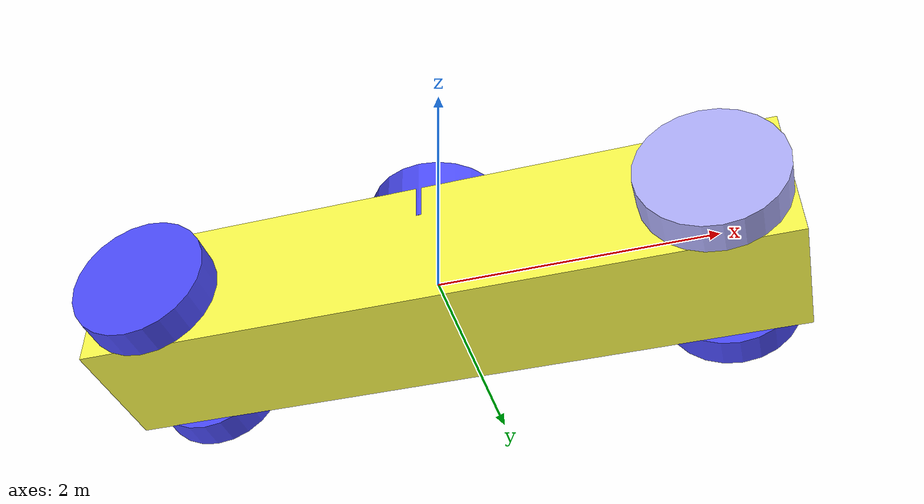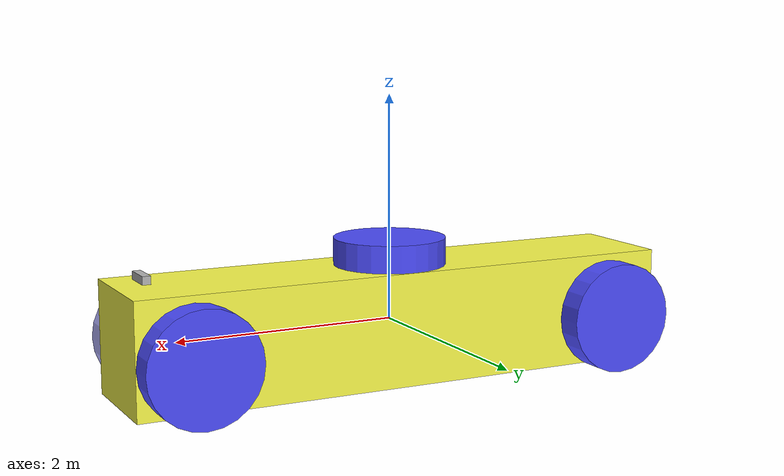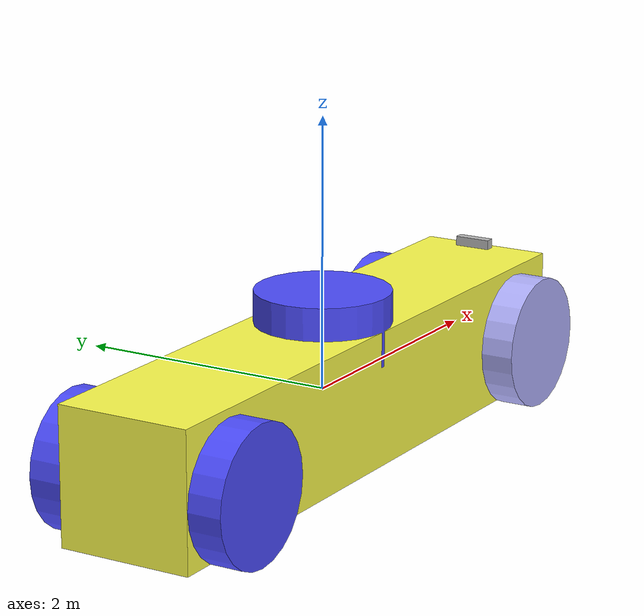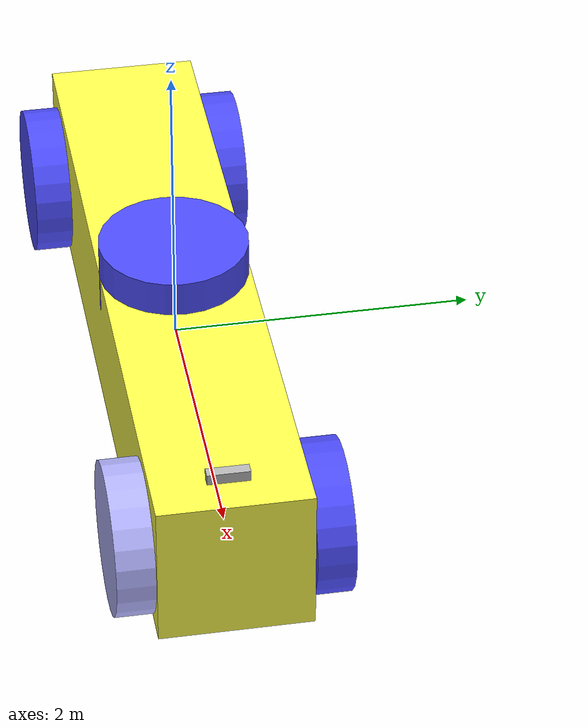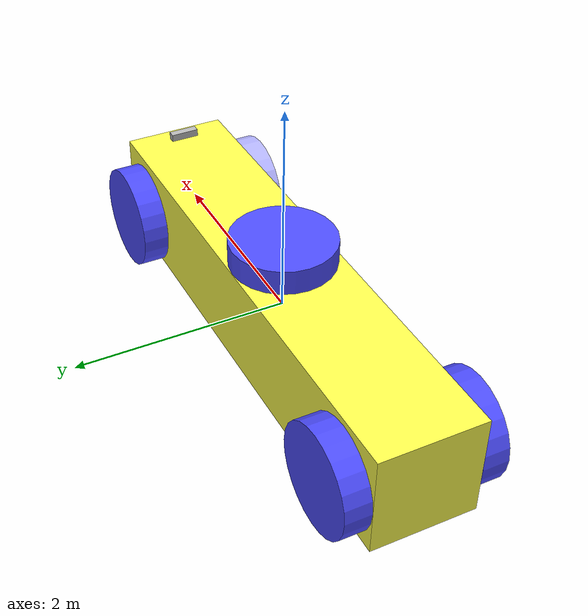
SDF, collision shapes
<?xml version='1.0'?>
<sdf version='1.6'>
  <model name='car_kinect'>
    <link name='link_5_clone'>
      <inertial>
        <mass>1.31112</mass>
        <inertia>
          <ixx>0.297083</ixx>
          <ixy>0</ixy>
          <ixz>0</ixz>
          <iyy>2.91933</iyy>
          <iyz>0</iyz>
          <izz>2.84077</izz>
        </inertia>
        <pose frame=''>0 0 0 0 -0 0</pose>
      </inertial>
      <pose frame=''>0 0 0 0 -0 0</pose>
      <gravity>1</gravity>
      <self_collide>0</self_collide>
      <kinematic>0</kinematic>
      <enable_wind>0</enable_wind>
      <visual name='visual'>
        <pose frame=''>0 0 0 0 -0 0</pose>
        <geometry>
          <box>
            <size>5 1 1</size>
          </box>
        </geometry>
        <material>
          <lighting>1</lighting>
          <script>
            <uri>file://media/materials/scripts/gazebo.material</uri>
            <name>Gazebo/Grey</name>
          </script>
          <shader type='vertex'>
            <normal_map>__default__</normal_map>
          </shader>
          <ambient>1 1 0.3 1</ambient>
          <diffuse>0.7 0.7 0.7 1</diffuse>
          <specular>0.01 0.01 0.01 1</specular>
          <emissive>0 0 0 1</emissive>
        </material>
        <transparency>0</transparency>
        <cast_shadows>1</cast_shadows>
      </visual>
      <collision name='collision'>
        <laser_retro>0</laser_retro>
        <max_contacts>10</max_contacts>
        <pose frame=''>0 0 0 0 -0 0</pose>
        <geometry>
          <box>
            <size>5 1 0.999998</size>
          </box>
        </geometry>
        <surface>
          <friction>
            <ode>
              <mu>1</mu>
              <mu2>1</mu2>
              <fdir1>0 0 0</fdir1>
              <slip1>0</slip1>
              <slip2>0</slip2>
            </ode>
            <torsional>
              <coefficient>1</coefficient>
              <patch_radius>0</patch_radius>
              <surface_radius>0</surface_radius>
              <use_patch_radius>1</use_patch_radius>
              <ode>
                <slip>0</slip>
              </ode>
            </torsional>
          </friction>
          <bounce>
            <restitution_coefficient>0</restitution_coefficient>
            <threshold>1e+06</threshold>
          </bounce>
          <contact>
            <collide_without_contact>0</collide_without_contact>
            <collide_without_contact_bitmask>1</collide_without_contact_bitmask>
            <collide_bitmask>1</collide_bitmask>
            <ode>
              <soft_cfm>0</soft_cfm>
              <soft_erp>0.2</soft_erp>
              <kp>1e+13</kp>
              <kd>1</kd>
              <max_vel>0.01</max_vel>
              <min_depth>0</min_depth>
            </ode>
            <bullet>
              <split_impulse>1</split_impulse>
              <split_impulse_penetration_threshold>-0.01</split_impulse_penetration_threshold>
              <soft_cfm>0</soft_cfm>
              <soft_erp>0.2</soft_erp>
              <kp>1e+13</kp>
              <kd>1</kd>
            </bullet>
          </contact>
        </surface>
      </collision>
    </link>
    <link name='link_7'>
      <inertial>
        <mass>1</mass>
        <inertia>
          <ixx>0.145833</ixx>
          <ixy>0</ixy>
          <ixz>0</ixz>
          <iyy>0.145833</iyy>
          <iyz>0</iyz>
          <izz>0.125</izz>
        </inertia>
        <pose frame=''>0 0 0 0 -0 0</pose>
      </inertial>
      <pose frame=''>2 0.637548 -0.058333 -1.5707 -0 -0</pose>
      <gravity>1</gravity>
      <self_collide>0</self_collide>
      <kinematic>0</kinematic>
      <enable_wind>0</enable_wind>
      <visual name='visual'>
        <pose frame=''>0 0 0 0 -0 0</pose>
        <geometry>
          <cylinder>
            <radius>0.5</radius>
            <length>0.25</length>
          </cylinder>
        </geometry>
        <material>
          <lighting>1</lighting>
          <script>
            <uri>file://media/materials/scripts/gazebo.material</uri>
            <name>Gazebo/Grey</name>
          </script>
          <shader type='vertex'>
            <normal_map>__default__</normal_map>
          </shader>
          <ambient>0.3 0.3 1 1</ambient>
          <diffuse>0.7 0.7 0.7 1</diffuse>
          <specular>0.01 0.01 0.01 1</specular>
          <emissive>0 0 0 1</emissive>
        </material>
        <transparency>0</transparency>
        <cast_shadows>1</cast_shadows>
      </visual>
      <collision name='collision'>
        <laser_retro>0</laser_retro>
        <max_contacts>10</max_contacts>
        <pose frame=''>0 0 0 0 -0 0</pose>
        <geometry>
          <cylinder>
            <radius>0.5</radius>
            <length>0.25</length>
          </cylinder>
        </geometry>
        <surface>
          <friction>
            <ode>
              <mu>1</mu>
              <mu2>1</mu2>
              <fdir1>0 0 0</fdir1>
              <slip1>0</slip1>
              <slip2>0</slip2>
            </ode>
            <torsional>
              <coefficient>1</coefficient>
              <patch_radius>0</patch_radius>
              <surface_radius>0</surface_radius>
              <use_patch_radius>1</use_patch_radius>
              <ode>
                <slip>0</slip>
              </ode>
            </torsional>
          </friction>
          <bounce>
            <restitution_coefficient>0</restitution_coefficient>
            <threshold>1e+06</threshold>
          </bounce>
          <contact>
            <collide_without_contact>0</collide_without_contact>
            <collide_without_contact_bitmask>1</collide_without_contact_bitmask>
            <collide_bitmask>1</collide_bitmask>
            <ode>
              <soft_cfm>0</soft_cfm>
              <soft_erp>0.2</soft_erp>
              <kp>1e+13</kp>
              <kd>1</kd>
              <max_vel>0.01</max_vel>
              <min_depth>0</min_depth>
            </ode>
            <bullet>
              <split_impulse>1</split_impulse>
              <split_impulse_penetration_threshold>-0.01</split_impulse_penetration_threshold>
              <soft_cfm>0</soft_cfm>
              <soft_erp>0.2</soft_erp>
              <kp>1e+13</kp>
              <kd>1</kd>
            </bullet>
          </contact>
        </surface>
      </collision>
    </link>
    <link name='link_7_clone'>
      <inertial>
        <mass>1</mass>
        <inertia>
          <ixx>0.145833</ixx>
          <ixy>0</ixy>
          <ixz>0</ixz>
          <iyy>0.145833</iyy>
          <iyz>0</iyz>
          <izz>0.125</izz>
        </inertia>
        <pose frame=''>0 0 0 0 -0 0</pose>
      </inertial>
      <pose frame=''>2 -0.627548 -0.058333 1.5707 -0 0</pose>
      <gravity>1</gravity>
      <self_collide>0</self_collide>
      <kinematic>0</kinematic>
      <enable_wind>0</enable_wind>
      <visual name='visual'>
        <pose frame=''>0 0 0 0 -0 0</pose>
        <geometry>
          <cylinder>
            <radius>0.5</radius>
            <length>0.25</length>
          </cylinder>
        </geometry>
        <material>
          <lighting>1</lighting>
          <script>
            <uri>file://media/materials/scripts/gazebo.material</uri>
            <name>Gazebo/Grey</name>
          </script>
          <shader type='vertex'>
            <normal_map>__default__</normal_map>
          </shader>
          <ambient>0.3 0.3 1 1</ambient>
          <diffuse>0.7 0.7 1 1</diffuse>
          <specular>0.01 0.01 0.01 1</specular>
          <emissive>0 0 0 1</emissive>
        </material>
        <transparency>0</transparency>
        <cast_shadows>1</cast_shadows>
      </visual>
      <collision name='collision'>
        <laser_retro>0</laser_retro>
        <max_contacts>10</max_contacts>
        <pose frame=''>0 0 0 0 -0 0</pose>
        <geometry>
          <cylinder>
            <radius>0.5</radius>
            <length>0.25</length>
          </cylinder>
        </geometry>
        <surface>
          <friction>
            <ode>
              <mu>1</mu>
              <mu2>1</mu2>
              <fdir1>0 0 0</fdir1>
              <slip1>0</slip1>
              <slip2>0</slip2>
            </ode>
            <torsional>
              <coefficient>1</coefficient>
              <patch_radius>0</patch_radius>
              <surface_radius>0</surface_radius>
              <use_patch_radius>1</use_patch_radius>
              <ode>
                <slip>0</slip>
              </ode>
            </torsional>
          </friction>
          <bounce>
            <restitution_coefficient>0</restitution_coefficient>
            <threshold>1e+06</threshold>
          </bounce>
          <contact>
            <collide_without_contact>0</collide_without_contact>
            <collide_without_contact_bitmask>1</collide_without_contact_bitmask>
            <collide_bitmask>1</collide_bitmask>
            <ode>
              <soft_cfm>0</soft_cfm>
              <soft_erp>0.2</soft_erp>
              <kp>1e+13</kp>
              <kd>1</kd>
              <max_vel>0.01</max_vel>
              <min_depth>0</min_depth>
            </ode>
            <bullet>
              <split_impulse>1</split_impulse>
              <split_impulse_penetration_threshold>-0.01</split_impulse_penetration_threshold>
              <soft_cfm>0</soft_cfm>
              <soft_erp>0.2</soft_erp>
              <kp>1e+13</kp>
              <kd>1</kd>
            </bullet>
          </contact>
        </surface>
      </collision>
    </link>
    <link name='link_7_clone_clone'>
      <inertial>
        <mass>1</mass>
        <inertia>
          <ixx>0.145833</ixx>
          <ixy>0</ixy>
          <ixz>0</ixz>
          <iyy>0.145833</iyy>
          <iyz>0</iyz>
          <izz>0.125</izz>
        </inertia>
        <pose frame=''>0 0 0 0 -0 0</pose>
      </inertial>
      <pose frame=''>-2 -0.627548 -0.058333 1.5707 -0 0</pose>
      <gravity>1</gravity>
      <self_collide>0</self_collide>
      <kinematic>0</kinematic>
      <enable_wind>0</enable_wind>
      <visual name='visual'>
        <pose frame=''>0 0 0 0 -0 0</pose>
        <geometry>
          <cylinder>
            <radius>0.5</radius>
            <length>0.25</length>
          </cylinder>
        </geometry>
        <material>
          <lighting>1</lighting>
          <script>
            <uri>file://media/materials/scripts/gazebo.material</uri>
            <name>Gazebo/Grey</name>
          </script>
          <shader type='vertex'>
            <normal_map>__default__</normal_map>
          </shader>
          <ambient>0.3 0.3 1 1</ambient>
          <diffuse>0.7 0.7 0.7 1</diffuse>
          <specular>0.01 0.01 0.01 1</specular>
          <emissive>0 0 0 1</emissive>
        </material>
        <transparency>0</transparency>
        <cast_shadows>1</cast_shadows>
      </visual>
      <collision name='collision'>
        <laser_retro>0</laser_retro>
        <max_contacts>10</max_contacts>
        <pose frame=''>0 0 0 0 -0 0</pose>
        <geometry>
          <cylinder>
            <radius>0.5</radius>
            <length>0.25</length>
          </cylinder>
        </geometry>
        <surface>
          <friction>
            <ode>
              <mu>1</mu>
              <mu2>1</mu2>
              <fdir1>0 0 0</fdir1>
              <slip1>0</slip1>
              <slip2>0</slip2>
            </ode>
            <torsional>
              <coefficient>1</coefficient>
              <patch_radius>0</patch_radius>
              <surface_radius>0</surface_radius>
              <use_patch_radius>1</use_patch_radius>
              <ode>
                <slip>0</slip>
              </ode>
            </torsional>
          </friction>
          <bounce>
            <restitution_coefficient>0</restitution_coefficient>
            <threshold>1e+06</threshold>
          </bounce>
          <contact>
            <collide_without_contact>0</collide_without_contact>
            <collide_without_contact_bitmask>1</collide_without_contact_bitmask>
            <collide_bitmask>1</collide_bitmask>
            <ode>
              <soft_cfm>0</soft_cfm>
              <soft_erp>0.2</soft_erp>
              <kp>1e+13</kp>
              <kd>1</kd>
              <max_vel>0.01</max_vel>
              <min_depth>0</min_depth>
            </ode>
            <bullet>
              <split_impulse>1</split_impulse>
              <split_impulse_penetration_threshold>-0.01</split_impulse_penetration_threshold>
              <soft_cfm>0</soft_cfm>
              <soft_erp>0.2</soft_erp>
              <kp>1e+13</kp>
              <kd>1</kd>
            </bullet>
          </contact>
        </surface>
      </collision>
    </link>
    <link name='link_7_clone_clone_clone'>
      <inertial>
        <mass>1</mass>
        <inertia>
          <ixx>0.145833</ixx>
          <ixy>0</ixy>
          <ixz>0</ixz>
          <iyy>0.145833</iyy>
          <iyz>0</iyz>
          <izz>0.125</izz>
        </inertia>
        <pose frame=''>0 0 0 0 -0 0</pose>
      </inertial>
      <pose frame=''>-2 0.622548 -0.058333 -1.5707 -0 -0</pose>
      <gravity>1</gravity>
      <self_collide>0</self_collide>
      <kinematic>0</kinematic>
      <enable_wind>0</enable_wind>
      <visual name='visual'>
        <pose frame=''>0 0 0 0 -0 0</pose>
        <geometry>
          <cylinder>
            <radius>0.5</radius>
            <length>0.25</length>
          </cylinder>
        </geometry>
        <material>
          <lighting>1</lighting>
          <script>
            <uri>file://media/materials/scripts/gazebo.material</uri>
            <name>Gazebo/Grey</name>
          </script>
          <shader type='vertex'>
            <normal_map>__default__</normal_map>
          </shader>
          <ambient>0.3 0.3 1 1</ambient>
          <diffuse>0.7 0.7 0.7 1</diffuse>
          <specular>0.01 0.01 0.01 1</specular>
          <emissive>0 0 0 1</emissive>
        </material>
        <transparency>0</transparency>
        <cast_shadows>1</cast_shadows>
      </visual>
      <collision name='collision'>
        <laser_retro>0</laser_retro>
        <max_contacts>10</max_contacts>
        <pose frame=''>0 0 0 0 -0 0</pose>
        <geometry>
          <cylinder>
            <radius>0.5</radius>
            <length>0.25</length>
          </cylinder>
        </geometry>
        <surface>
          <friction>
            <ode>
              <mu>1</mu>
              <mu2>1</mu2>
              <fdir1>0 0 0</fdir1>
              <slip1>0</slip1>
              <slip2>0</slip2>
            </ode>
            <torsional>
              <coefficient>1</coefficient>
              <patch_radius>0</patch_radius>
              <surface_radius>0</surface_radius>
              <use_patch_radius>1</use_patch_radius>
              <ode>
                <slip>0</slip>
              </ode>
            </torsional>
          </friction>
          <bounce>
            <restitution_coefficient>0</restitution_coefficient>
            <threshold>1e+06</threshold>
          </bounce>
          <contact>
            <collide_without_contact>0</collide_without_contact>
            <collide_without_contact_bitmask>1</collide_without_contact_bitmask>
            <collide_bitmask>1</collide_bitmask>
            <ode>
              <soft_cfm>0</soft_cfm>
              <soft_erp>0.2</soft_erp>
              <kp>1e+13</kp>
              <kd>1</kd>
              <max_vel>0.01</max_vel>
              <min_depth>0</min_depth>
            </ode>
            <bullet>
              <split_impulse>1</split_impulse>
              <split_impulse_penetration_threshold>-0.01</split_impulse_penetration_threshold>
              <soft_cfm>0</soft_cfm>
              <soft_erp>0.2</soft_erp>
              <kp>1e+13</kp>
              <kd>1</kd>
            </bullet>
          </contact>
        </surface>
      </collision>
    </link>
    <link name='link_9'>
      <inertial>
        <mass>1</mass>
        <inertia>
          <ixx>0.145833</ixx>
          <ixy>0</ixy>
          <ixz>0</ixz>
          <iyy>0.145833</iyy>
          <iyz>0</iyz>
          <izz>0.125</izz>
        </inertia>
        <pose frame=''>0 0 0 0 -0 0</pose>
      </inertial>
      <pose frame=''>-0 -0.0025 0.491667 0 -0 0</pose>
      <gravity>1</gravity>
      <self_collide>0</self_collide>
      <kinematic>0</kinematic>
      <enable_wind>0</enable_wind>
      <visual name='visual'>
        <pose frame=''>0 0 0 0 -0 0</pose>
        <geometry>
          <cylinder>
            <radius>0.5</radius>
            <length>0.5</length>
          </cylinder>
        </geometry>
        <material>
          <lighting>1</lighting>
          <script>
            <uri>file://media/materials/scripts/gazebo.material</uri>
            <name>Gazebo/Grey</name>
          </script>
          <shader type='vertex'>
            <normal_map>__default__</normal_map>
          </shader>
          <ambient>0.3 0.3 1 1</ambient>
          <diffuse>0.7 0.7 0.7 1</diffuse>
          <specular>0.01 0.01 0.01 1</specular>
          <emissive>0 0 0 1</emissive>
        </material>
        <transparency>0</transparency>
        <cast_shadows>1</cast_shadows>
      </visual>
      <collision name='collision'>
        <laser_retro>0</laser_retro>
        <max_contacts>10</max_contacts>
        <pose frame=''>0 0 0 0 -0 0</pose>
        <geometry>
          <cylinder>
            <radius>0.5</radius>
            <length>0.5</length>
          </cylinder>
        </geometry>
        <surface>
          <friction>
            <ode>
              <mu>1</mu>
              <mu2>1</mu2>
              <fdir1>0 0 0</fdir1>
              <slip1>0</slip1>
              <slip2>0</slip2>
            </ode>
            <torsional>
              <coefficient>1</coefficient>
              <patch_radius>0</patch_radius>
              <surface_radius>0</surface_radius>
              <use_patch_radius>1</use_patch_radius>
              <ode>
                <slip>0</slip>
              </ode>
            </torsional>
          </friction>
          <bounce>
            <restitution_coefficient>0</restitution_coefficient>
            <threshold>1e+06</threshold>
          </bounce>
          <contact>
            <collide_without_contact>0</collide_without_contact>
            <collide_without_contact_bitmask>1</collide_without_contact_bitmask>
            <collide_bitmask>1</collide_bitmask>
            <ode>
              <soft_cfm>0</soft_cfm>
              <soft_erp>0.2</soft_erp>
              <kp>1e+13</kp>
              <kd>1</kd>
              <max_vel>0.01</max_vel>
              <min_depth>0</min_depth>
            </ode>
            <bullet>
              <split_impulse>1</split_impulse>
              <split_impulse_penetration_threshold>-0.01</split_impulse_penetration_threshold>
              <soft_cfm>0</soft_cfm>
              <soft_erp>0.2</soft_erp>
              <kp>1e+13</kp>
              <kd>1</kd>
            </bullet>
          </contact>
        </surface>
      </collision>
    </link>
    <model name='kinect_ros'>
      <pose frame=''>2.27096 -0.013561 0.576038 0 -0 0</pose>
      <link name='link'>
        <inertial>
          <mass>0.1</mass>
          <inertia>
            <ixx>1</ixx>
            <ixy>0</ixy>
            <ixz>0</ixz>
            <iyy>1</iyy>
            <iyz>0</iyz>
            <izz>1</izz>
          </inertia>
        </inertial>
        <collision name='collision'>
          <geometry>
            <box>
              <size>0.073 0.276 0.072</size>
            </box>
          </geometry>
          <max_contacts>10</max_contacts>
          <surface>
            <contact>
              <ode/>
            </contact>
            <bounce/>
            <friction>
              <torsional>
                <ode/>
              </torsional>
              <ode/>
            </friction>
          </surface>
        </collision>
        <visual name='visual'>
          <geometry>
            <mesh>
              <uri>model://car_kinect/meshes/kinect.dae</uri>
            </mesh>
          </geometry>
        </visual>
        <sensor name='camera' type='depth'>
          <update_rate>20</update_rate>
          <camera name='__default__'>
            <horizontal_fov>1.0472</horizontal_fov>
            <image>
              <width>640</width>
              <height>480</height>
              <format>R8G8B8</format>
            </image>
            <clip>
              <near>0.05</near>
              <far>3</far>
            </clip>
          </camera>
          <plugin name='camera_plugin' filename='libgazebo_ros_openni_kinect.so'>
            <baseline>0.2</baseline>
            <alwaysOn>1</alwaysOn>
            <updateRate>0.0</updateRate>
            <cameraName>camera_ir</cameraName>
            <imageTopicName>/camera/color/image_raw</imageTopicName>
            <cameraInfoTopicName>/camera/color/camera_info</cameraInfoTopicName>
            <depthImageTopicName>/camera/depth/image_raw</depthImageTopicName>
            <depthImageCameraInfoTopicName>/camera/depth/camera_info</depthImageCameraInfoTopicName>
            <pointCloudTopicName>/camera/depth/points</pointCloudTopicName>
            <frameName>camera_link</frameName>
            <pointCloudCutoff>0.5</pointCloudCutoff>
            <pointCloudCutoffMax>3.0</pointCloudCutoffMax>
            <distortionK1>0</distortionK1>
            <distortionK2>0</distortionK2>
            <distortionK3>0</distortionK3>
            <distortionT1>0</distortionT1>
            <distortionT2>0</distortionT2>
            <CxPrime>0</CxPrime>
            <Cx>0</Cx>
            <Cy>0</Cy>
            <focalLength>0</focalLength>
            <hackBaseline>0</hackBaseline>
          </plugin>
        </sensor>
        <self_collide>0</self_collide>
        <enable_wind>0</enable_wind>
        <kinematic>0</kinematic>
      </link>
    </model>
    <joint name='link_5_clone_JOINT_0' type='revolute'>
      <parent>link_5_clone</parent>
      <child>link_7</child>
      <pose frame=''>0 0 0 0 -0 0</pose>
      <axis>
        <xyz>0 0 1</xyz>
        <use_parent_model_frame>0</use_parent_model_frame>
        <limit>
          <lower>-1.79769e+308</lower>
          <upper>1.79769e+308</upper>
          <effort>-1</effort>
          <velocity>-1</velocity>
        </limit>
        <dynamics>
          <spring_reference>0</spring_reference>
          <spring_stiffness>0</spring_stiffness>
          <damping>0</damping>
          <friction>0</friction>
        </dynamics>
      </axis>
      <physics>
        <ode>
          <limit>
            <cfm>0</cfm>
            <erp>0.2</erp>
          </limit>
          <suspension>
            <cfm>0</cfm>
            <erp>0.2</erp>
          </suspension>
        </ode>
      </physics>
    </joint>
    <joint name='link_5_clone_JOINT_1_0' type='fixed'>
      <parent>link_5_clone</parent>
      <child>kinect_ros::link</child>
      <pose frame=''>0 0 0 0 -0 0</pose>
      <physics>
        <ode>
          <limit>
            <cfm>0</cfm>
            <erp>0.2</erp>
          </limit>
          <suspension>
            <cfm>0</cfm>
            <erp>0.2</erp>
          </suspension>
        </ode>
      </physics>
    </joint>
    <joint name='link_5_clone_JOINT_1' type='revolute'>
      <parent>link_5_clone</parent>
      <child>link_7_clone</child>
      <pose frame=''>0 0 0 0 -0 0</pose>
      <axis>
        <xyz>1 0 0</xyz>
        <use_parent_model_frame>0</use_parent_model_frame>
        <limit>
          <lower>-1.79769e+308</lower>
          <upper>1.79769e+308</upper>
          <effort>-1</effort>
          <velocity>-1</velocity>
        </limit>
        <dynamics>
          <spring_reference>0</spring_reference>
          <spring_stiffness>0</spring_stiffness>
          <damping>0</damping>
          <friction>0</friction>
        </dynamics>
      </axis>
      <physics>
        <ode>
          <limit>
            <cfm>0</cfm>
            <erp>0.2</erp>
          </limit>
          <suspension>
            <cfm>0</cfm>
            <erp>0.2</erp>
          </suspension>
        </ode>
      </physics>
    </joint>
    <joint name='link_5_clone_JOINT_2' type='revolute'>
      <parent>link_5_clone</parent>
      <child>link_7_clone_clone</child>
      <pose frame=''>0 0 0 0 -0 0</pose>
      <axis>
        <xyz>1 0 0</xyz>
        <use_parent_model_frame>0</use_parent_model_frame>
        <limit>
          <lower>-1.79769e+308</lower>
          <upper>1.79769e+308</upper>
          <effort>-1</effort>
          <velocity>-1</velocity>
        </limit>
        <dynamics>
          <spring_reference>0</spring_reference>
          <spring_stiffness>0</spring_stiffness>
          <damping>0</damping>
          <friction>0</friction>
        </dynamics>
      </axis>
      <physics>
        <ode>
          <limit>
            <cfm>0</cfm>
            <erp>0.2</erp>
          </limit>
          <suspension>
            <cfm>0</cfm>
            <erp>0.2</erp>
          </suspension>
        </ode>
      </physics>
    </joint>
    <joint name='link_5_clone_JOINT_3' type='revolute'>
      <parent>link_5_clone</parent>
      <child>link_7_clone_clone_clone</child>
      <pose frame=''>0 0 0 0 -0 0</pose>
      <axis>
        <xyz>1 0 0</xyz>
        <use_parent_model_frame>0</use_parent_model_frame>
        <limit>
          <lower>-1.79769e+308</lower>
          <upper>1.79769e+308</upper>
          <effort>-1</effort>
          <velocity>-1</velocity>
        </limit>
        <dynamics>
          <spring_reference>0</spring_reference>
          <spring_stiffness>0</spring_stiffness>
          <damping>0</damping>
          <friction>0</friction>
        </dynamics>
      </axis>
      <physics>
        <ode>
          <limit>
            <cfm>0</cfm>
            <erp>0.2</erp>
          </limit>
          <suspension>
            <cfm>0</cfm>
            <erp>0.2</erp>
          </suspension>
        </ode>
      </physics>
    </joint>
    <joint name='link_5_clone_JOINT_5' type='revolute'>
      <parent>link_5_clone</parent>
      <child>link_9</child>
      <pose frame=''>0 0 0 0 -0 0</pose>
      <axis>
        <xyz>1 0 0</xyz>
        <use_parent_model_frame>0</use_parent_model_frame>
        <limit>
          <lower>-1.79769e+308</lower>
          <upper>1.79769e+308</upper>
          <effort>-1</effort>
          <velocity>-1</velocity>
        </limit>
        <dynamics>
          <spring_reference>0</spring_reference>
          <spring_stiffness>0</spring_stiffness>
          <damping>0</damping>
          <friction>0</friction>
        </dynamics>
      </axis>
      <physics>
        <ode>
          <limit>
            <cfm>0</cfm>
            <erp>0.2</erp>
          </limit>
          <suspension>
            <cfm>0</cfm>
            <erp>0.2</erp>
          </suspension>
        </ode>
      </physics>
    </joint>
    <static>0</static>
    <allow_auto_disable>1</allow_auto_disable>
  </model>
</sdf>
